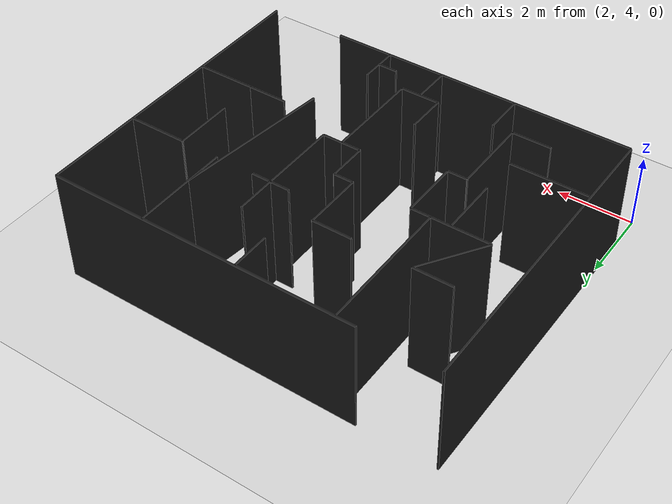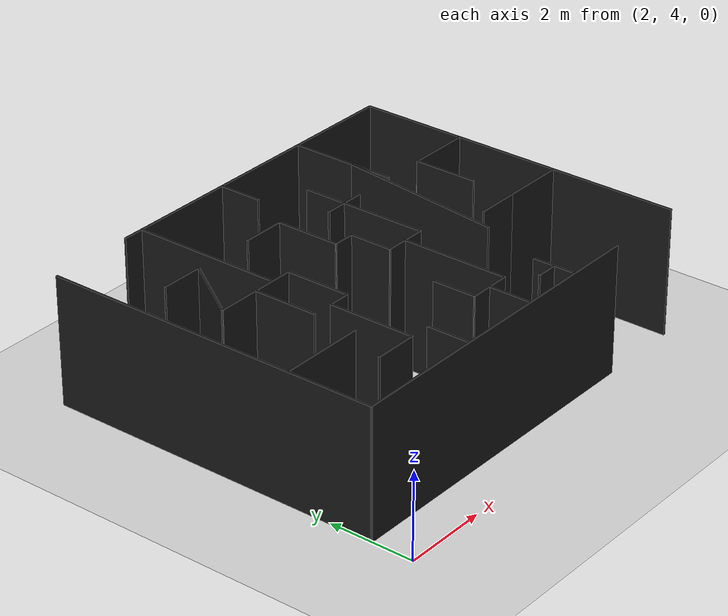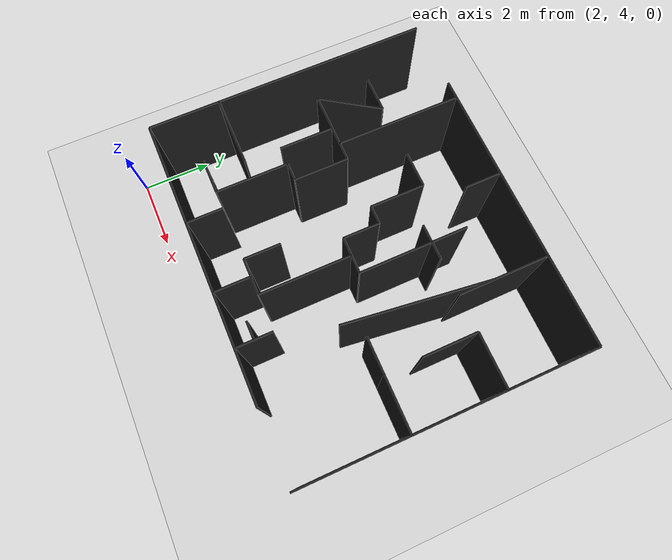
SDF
<sdf version="1.6">
 <world name="default">
  <model name="box_37">
   <pose>8.25 5.5 1.5 0 0 -3.14159</pose>
   <link name="link">
    <inertial>
     <mass>1</mass>
     <inertia><ixx>0</ixx><ixy>0</ixy><ixz>0</ixz><iyy>0</iyy><iyz>0</iyz><izz>0</izz></inertia>
    </inertial>
    <collision name="collision"><geometry><box><size>0.5 0.05 3</size></box></geometry></collision>
    <visual name="visual">
     <geometry><box><size>0.5 0.05 3</size></box></geometry>
     <material>
      <script><name>Gazebo/Black</name><uri>file://media/materials/scripts/gazebo.material</uri></script>
     </material>
    </visual>
   </link>
   <static>1</static>
  </model>
  <model name="box_36">
   <pose>8.5 5.5 1.5 0 0 -1.5708</pose>
   <link name="link">
    <inertial>
     <mass>1</mass>
     <inertia><ixx>0</ixx><ixy>0</ixy><ixz>0</ixz><iyy>0</iyy><iyz>0</iyz><izz>0</izz></inertia>
    </inertial>
    <collision name="collision"><geometry><box><size>1 0.05 3</size></box></geometry></collision>
    <visual name="visual">
     <geometry><box><size>1 0.05 3</size></box></geometry>
     <material>
      <script><name>Gazebo/Black</name><uri>file://media/materials/scripts/gazebo.material</uri></script>
     </material>
    </visual>
   </link>
   <static>1</static>
  </model>
  <model name="box_35">
   <pose>9.25 9.5 1.5 0 -0 1.44644</pose>
   <link name="link">
    <inertial>
     <mass>1</mass>
     <inertia><ixx>0</ixx><ixy>0</ixy><ixz>0</ixz><iyy>0</iyy><iyz>0</iyz><izz>0</izz></inertia>
    </inertial>
    <collision name="collision"><geometry><box><size>4.03113 0.05 3</size></box></geometry></collision>
    <visual name="visual">
     <geometry><box><size>4.03113 0.05 3</size></box></geometry>
     <material>
      <script><name>Gazebo/Black</name><uri>file://media/materials/scripts/gazebo.material</uri></script>
     </material>
    </visual>
   </link>
   <static>1</static>
  </model>
  <model name="box_34">
   <pose>9.5 11.75 1.5 0 0 -1.5708</pose>
   <link name="link">
    <inertial>
     <mass>1</mass>
     <inertia><ixx>0</ixx><ixy>0</ixy><ixz>0</ixz><iyy>0</iyy><iyz>0</iyz><izz>0</izz></inertia>
    </inertial>
    <collision name="collision"><geometry><box><size>2.5 0.05 3</size></box></geometry></collision>
    <visual name="visual">
     <geometry><box><size>2.5 0.05 3</size></box></geometry>
     <material>
      <script><name>Gazebo/Black</name><uri>file://media/materials/scripts/gazebo.material</uri></script>
     </material>
    </visual>
   </link>
   <static>1</static>
  </model>
  <model name="box_33">
   <pose>10 8 1.5 0 0 -3.14159</pose>
   <link name="link">
    <inertial>
     <mass>1</mass>
     <inertia><ixx>0</ixx><ixy>0</ixy><ixz>0</ixz><iyy>0</iyy><iyz>0</iyz><izz>0</izz></inertia>
    </inertial>
    <collision name="collision"><geometry><box><size>1 0.05 3</size></box></geometry></collision>
    <visual name="visual">
     <geometry><box><size>1 0.05 3</size></box></geometry>
     <material>
      <script><name>Gazebo/Black</name><uri>file://media/materials/scripts/gazebo.material</uri></script>
     </material>
    </visual>
   </link>
   <static>1</static>
  </model>
  <model name="box_32">
   <pose>7.5 7.25 1.5 0 0 -1.5708</pose>
   <link name="link">
    <inertial>
     <mass>1</mass>
     <inertia><ixx>0</ixx><ixy>0</ixy><ixz>0</ixz><iyy>0</iyy><iyz>0</iyz><izz>0</izz></inertia>
    </inertial>
    <collision name="collision"><geometry><box><size>2.5 0.05 3</size></box></geometry></collision>
    <visual name="visual">
     <geometry><box><size>2.5 0.05 3</size></box></geometry>
     <material>
      <script><name>Gazebo/Black</name><uri>file://media/materials/scripts/gazebo.material</uri></script>
     </material>
    </visual>
   </link>
   <static>1</static>
  </model>
  <model name="box_31">
   <pose>7 6 1.5 0 0 -3.14159</pose>
   <link name="link">
    <inertial>
     <mass>1</mass>
     <inertia><ixx>0</ixx><ixy>0</ixy><ixz>0</ixz><iyy>0</iyy><iyz>0</iyz><izz>0</izz></inertia>
    </inertial>
    <collision name="collision"><geometry><box><size>1 0.05 3</size></box></geometry></collision>
    <visual name="visual">
     <geometry><box><size>1 0.05 3</size></box></geometry>
     <material>
      <script><name>Gazebo/Black</name><uri>file://media/materials/scripts/gazebo.material</uri></script>
     </material>
    </visual>
   </link>
   <static>1</static>
  </model>
  <model name="box_30">
   <pose>6.5 6.5 1.5 0 -0 1.5708</pose>
   <link name="link">
    <inertial>
     <mass>1</mass>
     <inertia><ixx>0</ixx><ixy>0</ixy><ixz>0</ixz><iyy>0</iyy><iyz>0</iyz><izz>0</izz></inertia>
    </inertial>
    <collision name="collision"><geometry><box><size>1 0.05 3</size></box></geometry></collision>
    <visual name="visual">
     <geometry><box><size>1 0.05 3</size></box></geometry>
     <material>
      <script><name>Gazebo/Black</name><uri>file://media/materials/scripts/gazebo.material</uri></script>
     </material>
    </visual>
   </link>
   <static>1</static>
  </model>
  <model name="box_29">
   <pose>7 5.5 1.5 0 -0 1.5708</pose>
   <link name="link">
    <inertial>
     <mass>1</mass>
     <inertia><ixx>0</ixx><ixy>0</ixy><ixz>0</ixz><iyy>0</iyy><iyz>0</iyz><izz>0</izz></inertia>
    </inertial>
    <collision name="collision"><geometry><box><size>1 0.05 3</size></box></geometry></collision>
    <visual name="visual">
     <geometry><box><size>1 0.05 3</size></box></geometry>
     <material>
      <script><name>Gazebo/Black</name><uri>file://media/materials/scripts/gazebo.material</uri></script>
     </material>
    </visual>
   </link>
   <static>1</static>
  </model>
  <model name="box_28">
   <pose>4.5 11.25 1.5 0 0 -1.5708</pose>
   <link name="link">
    <inertial>
     <mass>1</mass>
     <inertia><ixx>0</ixx><ixy>0</ixy><ixz>0</ixz><iyy>0</iyy><iyz>0</iyz><izz>0</izz></inertia>
    </inertial>
    <collision name="collision"><geometry><box><size>3.5 0.05 3</size></box></geometry></collision>
    <visual name="visual">
     <geometry><box><size>3.5 0.05 3</size></box></geometry>
     <material>
      <script><name>Gazebo/Black</name><uri>file://media/materials/scripts/gazebo.material</uri></script>
     </material>
    </visual>
   </link>
   <static>1</static>
  </model>
  <model name="box_27">
   <pose>7 12.5 1.5 0 -0 1.5708</pose>
   <link name="link">
    <inertial>
     <mass>1</mass>
     <inertia><ixx>0</ixx><ixy>0</ixy><ixz>0</ixz><iyy>0</iyy><iyz>0</iyz><izz>0</izz></inertia>
    </inertial>
    <collision name="collision"><geometry><box><size>1 0.05 3</size></box></geometry></collision>
    <visual name="visual">
     <geometry><box><size>1 0.05 3</size></box></geometry>
     <material>
      <script><name>Gazebo/Black</name><uri>file://media/materials/scripts/gazebo.material</uri></script>
     </material>
    </visual>
   </link>
   <static>1</static>
  </model>
  <model name="box_26">
   <pose>11.25 8 1.5 0 0 -3.14159</pose>
   <link name="link">
    <inertial>
     <mass>1</mass>
     <inertia><ixx>0</ixx><ixy>0</ixy><ixz>0</ixz><iyy>0</iyy><iyz>0</iyz><izz>0</izz></inertia>
    </inertial>
    <collision name="collision"><geometry><box><size>1.5 0.05 3</size></box></geometry></collision>
    <visual name="visual">
     <geometry><box><size>1.5 0.05 3</size></box></geometry>
     <material>
      <script><name>Gazebo/Black</name><uri>file://media/materials/scripts/gazebo.material</uri></script>
     </material>
    </visual>
   </link>
   <static>1</static>
  </model>
  <model name="box_25">
   <pose>11.25 10.5 1.5 0 0 -3.14159</pose>
   <link name="link">
    <inertial>
     <mass>1</mass>
     <inertia><ixx>0</ixx><ixy>0</ixy><ixz>0</ixz><iyy>0</iyy><iyz>0</iyz><izz>0</izz></inertia>
    </inertial>
    <collision name="collision"><geometry><box><size>1.5 0.05 3</size></box></geometry></collision>
    <visual name="visual">
     <geometry><box><size>1.5 0.05 3</size></box></geometry>
     <material>
      <script><name>Gazebo/Black</name><uri>file://media/materials/scripts/gazebo.material</uri></script>
     </material>
    </visual>
   </link>
   <static>1</static>
  </model>
  <model name="box_24">
   <pose>10.5 9.75 1.5 0 0 -1.5708</pose>
   <link name="link">
    <inertial>
     <mass>1</mass>
     <inertia><ixx>0</ixx><ixy>0</ixy><ixz>0</ixz><iyy>0</iyy><iyz>0</iyz><izz>0</izz></inertia>
    </inertial>
    <collision name="collision"><geometry><box><size>1.5 0.05 3</size></box></geometry></collision>
    <visual name="visual">
     <geometry><box><size>1.5 0.05 3</size></box></geometry>
     <material>
      <script><name>Gazebo/Black</name><uri>file://media/materials/scripts/gazebo.material</uri></script>
     </material>
    </visual>
   </link>
   <static>1</static>
  </model>
  <model name="box_23">
   <pose>8 10.5 1.5 0 0 -3.14159</pose>
   <link name="link">
    <inertial>
     <mass>1</mass>
     <inertia><ixx>0</ixx><ixy>0</ixy><ixz>0</ixz><iyy>0</iyy><iyz>0</iyz><izz>0</izz></inertia>
    </inertial>
    <collision name="collision"><geometry><box><size>1 0.05 3</size></box></geometry></collision>
    <visual name="visual">
     <geometry><box><size>1 0.05 3</size></box></geometry>
     <material>
      <script><name>Gazebo/Black</name><uri>file://media/materials/scripts/gazebo.material</uri></script>
     </material>
    </visual>
   </link>
   <static>1</static>
  </model>
  <model name="box_21">
   <pose>8 10 1.5 0 0 -1.5708</pose>
   <link name="link">
    <inertial>
     <mass>1</mass>
     <inertia><ixx>0</ixx><ixy>0</ixy><ixz>0</ixz><iyy>0</iyy><iyz>0</iyz><izz>0</izz></inertia>
    </inertial>
    <collision name="collision"><geometry><box><size>3 0.05 3</size></box></geometry></collision>
    <visual name="visual">
     <geometry><box><size>3 0.05 3</size></box></geometry>
     <material>
      <script><name>Gazebo/Black</name><uri>file://media/materials/scripts/gazebo.material</uri></script>
     </material>
    </visual>
   </link>
   <static>1</static>
  </model>
  <model name="box_20">
   <pose>7.75 8.5 1.5 0 0 -3.14159</pose>
   <link name="link">
    <inertial>
     <mass>1</mass>
     <inertia><ixx>0</ixx><ixy>0</ixy><ixz>0</ixz><iyy>0</iyy><iyz>0</iyz><izz>0</izz></inertia>
    </inertial>
    <collision name="collision"><geometry><box><size>0.5 0.05 3</size></box></geometry></collision>
    <visual name="visual">
     <geometry><box><size>0.5 0.05 3</size></box></geometry>
     <material>
      <script><name>Gazebo/Black</name><uri>file://media/materials/scripts/gazebo.material</uri></script>
     </material>
    </visual>
   </link>
   <static>1</static>
  </model>
  <model name="box_19">
   <pose>7.25 8.5 1.5 0 0 -3.14159</pose>
   <link name="link">
    <inertial>
     <mass>1</mass>
     <inertia><ixx>0</ixx><ixy>0</ixy><ixz>0</ixz><iyy>0</iyy><iyz>0</iyz><izz>0</izz></inertia>
    </inertial>
    <collision name="collision"><geometry><box><size>0.5 0.05 3</size></box></geometry></collision>
    <visual name="visual">
     <geometry><box><size>0.5 0.05 3</size></box></geometry>
     <material>
      <script><name>Gazebo/Black</name><uri>file://media/materials/scripts/gazebo.material</uri></script>
     </material>
    </visual>
   </link>
   <static>1</static>
  </model>
  <model name="box_18">
   <pose>7 9 1.5 0 -0 1.5708</pose>
   <link name="link">
    <inertial>
     <mass>1</mass>
     <inertia><ixx>0</ixx><ixy>0</ixy><ixz>0</ixz><iyy>0</iyy><iyz>0</iyz><izz>0</izz></inertia>
    </inertial>
    <collision name="collision"><geometry><box><size>1 0.05 3</size></box></geometry></collision>
    <visual name="visual">
     <geometry><box><size>1 0.05 3</size></box></geometry>
     <material>
      <script><name>Gazebo/Black</name><uri>file://media/materials/scripts/gazebo.material</uri></script>
     </material>
    </visual>
   </link>
   <static>1</static>
  </model>
  <model name="box_17">
   <pose>6.75 9.5 1.5 0 -0 0</pose>
   <link name="link">
    <inertial>
     <mass>1</mass>
     <inertia><ixx>0</ixx><ixy>0</ixy><ixz>0</ixz><iyy>0</iyy><iyz>0</iyz><izz>0</izz></inertia>
    </inertial>
    <collision name="collision"><geometry><box><size>0.5 0.05 3</size></box></geometry></collision>
    <visual name="visual">
     <geometry><box><size>0.5 0.05 3</size></box></geometry>
     <material>
      <script><name>Gazebo/Black</name><uri>file://media/materials/scripts/gazebo.material</uri></script>
     </material>
    </visual>
   </link>
   <static>1</static>
  </model>
  <model name="box_16">
   <pose>6.5 10.25 1.5 0 -0 1.5708</pose>
   <link name="link">
    <inertial>
     <mass>1</mass>
     <inertia><ixx>0</ixx><ixy>0</ixy><ixz>0</ixz><iyy>0</iyy><iyz>0</iyz><izz>0</izz></inertia>
    </inertial>
    <collision name="collision"><geometry><box><size>1.5 0.05 3</size></box></geometry></collision>
    <visual name="visual">
     <geometry><box><size>1.5 0.05 3</size></box></geometry>
     <material>
      <script><name>Gazebo/Black</name><uri>file://media/materials/scripts/gazebo.material</uri></script>
     </material>
    </visual>
   </link>
   <static>1</static>
  </model>
  <model name="box_15">
   <pose>6 11 1.5 0 0 -3.14159</pose>
   <link name="link">
    <inertial>
     <mass>1</mass>
     <inertia><ixx>0</ixx><ixy>0</ixy><ixz>0</ixz><iyy>0</iyy><iyz>0</iyz><izz>0</izz></inertia>
    </inertial>
    <collision name="collision"><geometry><box><size>1 0.05 3</size></box></geometry></collision>
    <visual name="visual">
     <geometry><box><size>1 0.05 3</size></box></geometry>
     <material>
      <script><name>Gazebo/Black</name><uri>file://media/materials/scripts/gazebo.material</uri></script>
     </material>
    </visual>
   </link>
   <static>1</static>
  </model>
  <model name="box_14">
   <pose>5 5.5 1.5 0 -0 1.5708</pose>
   <link name="link">
    <inertial>
     <mass>1</mass>
     <inertia><ixx>0</ixx><ixy>0</ixy><ixz>0</ixz><iyy>0</iyy><iyz>0</iyz><izz>0</izz></inertia>
    </inertial>
    <collision name="collision"><geometry><box><size>1 0.05 3</size></box></geometry></collision>
    <visual name="visual">
     <geometry><box><size>1 0.05 3</size></box></geometry>
     <material>
      <script><name>Gazebo/Black</name><uri>file://media/materials/scripts/gazebo.material</uri></script>
     </material>
    </visual>
   </link>
   <static>1</static>
  </model>
  <model name="box_13">
   <pose>4 6 1.5 0 -0 0</pose>
   <link name="link">
    <inertial>
     <mass>1</mass>
     <inertia><ixx>0</ixx><ixy>0</ixy><ixz>0</ixz><iyy>0</iyy><iyz>0</iyz><izz>0</izz></inertia>
    </inertial>
    <collision name="collision"><geometry><box><size>1 0.05 3</size></box></geometry></collision>
    <visual name="visual">
     <geometry><box><size>1 0.05 3</size></box></geometry>
     <material>
      <script><name>Gazebo/Black</name><uri>file://media/materials/scripts/gazebo.material</uri></script>
     </material>
    </visual>
   </link>
   <static>1</static>
  </model>
  <model name="box_12">
   <pose>4.5 7 1.5 0 0 -1.5708</pose>
   <link name="link">
    <inertial>
     <mass>1</mass>
     <inertia><ixx>0</ixx><ixy>0</ixy><ixz>0</ixz><iyy>0</iyy><iyz>0</iyz><izz>0</izz></inertia>
    </inertial>
    <collision name="collision"><geometry><box><size>2 0.05 3</size></box></geometry></collision>
    <visual name="visual">
     <geometry><box><size>2 0.05 3</size></box></geometry>
     <material>
      <script><name>Gazebo/Black</name><uri>file://media/materials/scripts/gazebo.material</uri></script>
     </material>
    </visual>
   </link>
   <static>1</static>
  </model>
  <model name="box_11">
   <pose>4.75 8 1.5 0 0 -3.14159</pose>
   <link name="link">
    <inertial>
     <mass>1</mass>
     <inertia><ixx>0</ixx><ixy>0</ixy><ixz>0</ixz><iyy>0</iyy><iyz>0</iyz><izz>0</izz></inertia>
    </inertial>
    <collision name="collision"><geometry><box><size>0.5 0.05 3</size></box></geometry></collision>
    <visual name="visual">
     <geometry><box><size>0.5 0.05 3</size></box></geometry>
     <material>
      <script><name>Gazebo/Black</name><uri>file://media/materials/scripts/gazebo.material</uri></script>
     </material>
    </visual>
   </link>
   <static>1</static>
  </model>
  <model name="box_10">
   <pose>5 8.75 1.5 0 -0 1.5708</pose>
   <link name="link">
    <inertial>
     <mass>1</mass>
     <inertia><ixx>0</ixx><ixy>0</ixy><ixz>0</ixz><iyy>0</iyy><iyz>0</iyz><izz>0</izz></inertia>
    </inertial>
    <collision name="collision"><geometry><box><size>1.5 0.05 3</size></box></geometry></collision>
    <visual name="visual">
     <geometry><box><size>1.5 0.05 3</size></box></geometry>
     <material>
      <script><name>Gazebo/Black</name><uri>file://media/materials/scripts/gazebo.material</uri></script>
     </material>
    </visual>
   </link>
   <static>1</static>
  </model>
  <model name="box_9">
   <pose>4 8.75 1.5 0 -0 1.5708</pose>
   <link name="link">
    <inertial>
     <mass>1</mass>
     <inertia><ixx>0</ixx><ixy>0</ixy><ixz>0</ixz><iyy>0</iyy><iyz>0</iyz><izz>0</izz></inertia>
    </inertial>
    <collision name="collision"><geometry><box><size>1.5 0.05 3</size></box></geometry></collision>
    <visual name="visual">
     <geometry><box><size>1.5 0.05 3</size></box></geometry>
     <material>
      <script><name>Gazebo/Black</name><uri>file://media/materials/scripts/gazebo.material</uri></script>
     </material>
    </visual>
   </link>
   <static>1</static>
  </model>
  <model name="box_8">
   <pose>4 9.5 1.5 0 0 -3.14159</pose>
   <link name="link">
    <inertial>
     <mass>1</mass>
     <inertia><ixx>0</ixx><ixy>0</ixy><ixz>0</ixz><iyy>0</iyy><iyz>0</iyz><izz>0</izz></inertia>
    </inertial>
    <collision name="collision"><geometry><box><size>2 0.05 3</size></box></geometry></collision>
    <visual name="visual">
     <geometry><box><size>2 0.05 3</size></box></geometry>
     <material>
      <script><name>Gazebo/Black</name><uri>file://media/materials/scripts/gazebo.material</uri></script>
     </material>
    </visual>
   </link>
   <static>1</static>
  </model>
  <model name="box_7">
   <pose>3.5 10.25 1.5 0 -0 0.982794</pose>
   <link name="link">
    <inertial>
     <mass>1</mass>
     <inertia><ixx>0</ixx><ixy>0</ixy><ixz>0</ixz><iyy>0</iyy><iyz>0</iyz><izz>0</izz></inertia>
    </inertial>
    <collision name="collision"><geometry><box><size>1.80278 0.05 3</size></box></geometry></collision>
    <visual name="visual">
     <geometry><box><size>1.80278 0.05 3</size></box></geometry>
     <material>
      <script><name>Gazebo/Black</name><uri>file://media/materials/scripts/gazebo.material</uri></script>
     </material>
    </visual>
   </link>
   <static>1</static>
  </model>
  <model name="box_6">
   <pose>3.5 11 1.5 0 0 -3.14159</pose>
   <link name="link">
    <inertial>
     <mass>1</mass>
     <inertia><ixx>0</ixx><ixy>0</ixy><ixz>0</ixz><iyy>0</iyy><iyz>0</iyz><izz>0</izz></inertia>
    </inertial>
    <collision name="collision"><geometry><box><size>1 0.05 3</size></box></geometry></collision>
    <visual name="visual">
     <geometry><box><size>1 0.05 3</size></box></geometry>
     <material>
      <script><name>Gazebo/Black</name><uri>file://media/materials/scripts/gazebo.material</uri></script>
     </material>
    </visual>
   </link>
   <static>1</static>
  </model>
  <model name="box_5">
   <pose>3 7 1.5 0 0 -3.14159</pose>
   <link name="link">
    <inertial>
     <mass>1</mass>
     <inertia><ixx>0</ixx><ixy>0</ixy><ixz>0</ixz><iyy>0</iyy><iyz>0</iyz><izz>0</izz></inertia>
    </inertial>
    <collision name="collision"><geometry><box><size>2 0.05 3</size></box></geometry></collision>
    <visual name="visual">
     <geometry><box><size>2 0.05 3</size></box></geometry>
     <material>
      <script><name>Gazebo/Black</name><uri>file://media/materials/scripts/gazebo.material</uri></script>
     </material>
    </visual>
   </link>
   <static>1</static>
  </model>
  <model name="box_4">
   <pose>12 9 1.5 0 -0 1.5708</pose>
   <link name="link">
    <inertial>
     <mass>1</mass>
     <inertia><ixx>0</ixx><ixy>0</ixy><ixz>0</ixz><iyy>0</iyy><iyz>0</iyz><izz>0</izz></inertia>
    </inertial>
    <collision name="collision"><geometry><box><size>8 0.05 3</size></box></geometry></collision>
    <visual name="visual">
     <geometry><box><size>8 0.05 3</size></box></geometry>
     <material>
      <script><name>Gazebo/Black</name><uri>file://media/materials/scripts/gazebo.material</uri></script>
     </material>
    </visual>
   </link>
   <static>1</static>
  </model>
  <model name="box_3">
   <pose>8 13 1.5 0 0 -3.14159</pose>
   <link name="link">
    <inertial>
     <mass>1</mass>
     <inertia><ixx>0</ixx><ixy>0</ixy><ixz>0</ixz><iyy>0</iyy><iyz>0</iyz><izz>0</izz></inertia>
    </inertial>
    <collision name="collision"><geometry><box><size>8 0.05 3</size></box></geometry></collision>
    <visual name="visual">
     <geometry><box><size>8 0.05 3</size></box></geometry>
     <material>
      <script><name>Gazebo/Black</name><uri>file://media/materials/scripts/gazebo.material</uri></script>
     </material>
    </visual>
   </link>
   <static>1</static>
  </model>
  <model name="box_2">
   <pose>6 5 1.5 0 0 -3.14159</pose>
   <link name="link">
    <inertial>
     <mass>1</mass>
     <inertia><ixx>0</ixx><ixy>0</ixy><ixz>0</ixz><iyy>0</iyy><iyz>0</iyz><izz>0</izz></inertia>
    </inertial>
    <collision name="collision"><geometry><box><size>8 0.05 3</size></box></geometry></collision>
    <visual name="visual">
     <geometry><box><size>8 0.05 3</size></box></geometry>
     <material>
      <script><name>Gazebo/Black</name><uri>file://media/materials/scripts/gazebo.material</uri></script>
     </material>
    </visual>
   </link>
   <static>1</static>
  </model>
  <model name="box_1">
   <pose>2 9 1.5 0 -0 1.5708</pose>
   <link name="link">
    <inertial>
     <mass>1</mass>
     <inertia><ixx>0</ixx><ixy>0</ixy><ixz>0</ixz><iyy>0</iyy><iyz>0</iyz><izz>0</izz></inertia>
    </inertial>
    <collision name="collision"><geometry><box><size>8 0.05 3</size></box></geometry></collision>
    <visual name="visual">
     <geometry><box><size>8 0.05 3</size></box></geometry>
     <material>
      <script><name>Gazebo/Black</name><uri>file://media/materials/scripts/gazebo.material</uri></script>
     </material>
    </visual>
   </link>
   <static>1</static>
  </model>
  <light name="user_point_light_0" type="point">
   <pose>0 0 5 0 -0 0</pose>
   <diffuse>0.5 0.5 0.5 1</diffuse>
   <specular>0.1 0.1 0.1 1</specular>
   <attenuation>
    <range>1000</range>
    <constant>0.05</constant>
    <linear>0.01</linear>
    <quadratic>0.001</quadratic>
   </attenuation>
   <cast_shadows>0</cast_shadows>
   <direction>0 0 -1</direction>
  </light>
  <light name="user_point_light_1" type="point">
   <pose>20 0 5 0 -0 0</pose>
   <diffuse>0.5 0.5 0.5 1</diffuse>
   <specular>0.1 0.1 0.1 1</specular>
   <attenuation>
    <range>1000</range>
    <constant>0.05</constant>
    <linear>0.01</linear>
    <quadratic>0.001</quadratic>
   </attenuation>
   <cast_shadows>0</cast_shadows>
   <direction>0 0 -1</direction>
  </light>
  <light name="user_point_light_2" type="point">
   <pose>0 20 5 0 -0 0</pose>
   <diffuse>0.5 0.5 0.5 1</diffuse>
   <specular>0.1 0.1 0.1 1</specular>
   <attenuation>
    <range>1000</range>
    <constant>0.05</constant>
    <linear>0.01</linear>
    <quadratic>0.001</quadratic>
   </attenuation>
   <cast_shadows>0</cast_shadows>
   <direction>0 0 -1</direction>
  </light>
  <light name="user_point_light_3" type="point">
   <pose>20 20 5 0 -0 0</pose>
   <diffuse>0.5 0.5 0.5 1</diffuse>
   <specular>0.1 0.1 0.1 1</specular>
   <attenuation>
    <range>1000</range>
    <constant>0.05</constant>
    <linear>0.01</linear>
    <quadratic>0.001</quadratic>
   </attenuation>
   <cast_shadows>0</cast_shadows>
   <direction>0 0 -1</direction>
  </light>
  <light name="user_point_light_4" type="point">
   <pose>10 10 5 0 -0 0</pose>
   <diffuse>0.5 0.5 0.5 1</diffuse>
   <specular>0.1 0.1 0.1 1</specular>
   <attenuation>
    <range>1000</range>
    <constant>0.05</constant>
    <linear>0.01</linear>
    <quadratic>0.001</quadratic>
   </attenuation>
   <cast_shadows>0</cast_shadows>
   <direction>0 0 -1</direction>
  </light>
  <include><uri>model://ground_plane</uri></include>
  <gravity>0 0 -9.8</gravity>
  <magnetic_field>6e-06 2.3e-05 -4.2e-05</magnetic_field>
  <atmosphere type="adiabatic"/>
  <physics name="default_physics" default="0" type="ode">
   <max_step_size>0.001</max_step_size>
   <real_time_factor>1</real_time_factor>
   <real_time_update_rate>1000</real_time_update_rate>
  </physics>
  <scene><ambient>0.4 0.4 0.4 1</ambient><background>0.7 0.7 0.7 1</background><shadows>1</shadows></scene>
  <audio><device>default</device></audio>
  <spherical_coordinates>
   <surface_model>EARTH_WGS84</surface_model>
   <latitude_deg>0</latitude_deg>
   <longitude_deg>0</longitude_deg>
   <elevation>0</elevation>
   <heading_deg>0</heading_deg>
  </spherical_coordinates>
 </world>
</sdf>
